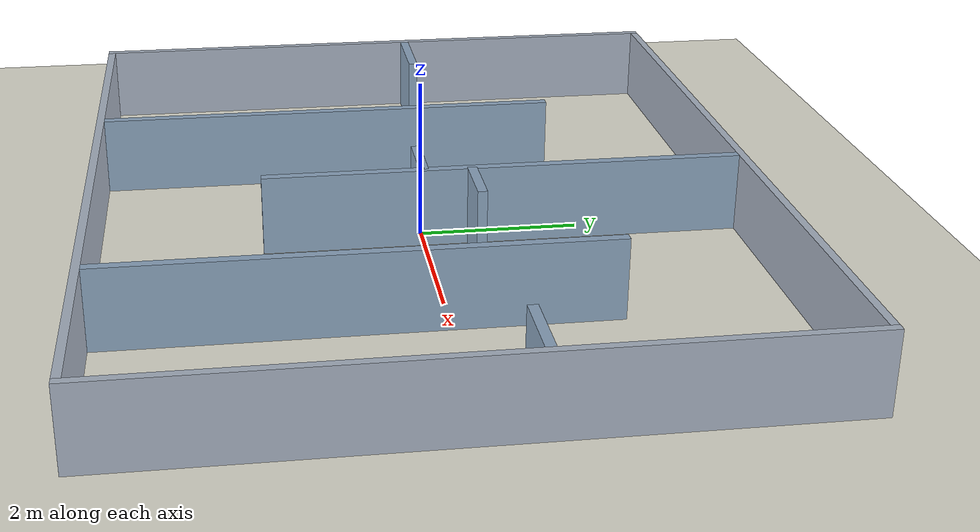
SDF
<sdf version="1.6">
 <world name="simulation_maze_aruco">
  <gravity>0 0 -9.81</gravity>
  <physics name="default_physics" default="true" type="ode">
   <max_step_size>0.001</max_step_size>
   <real_time_factor>1</real_time_factor>
   <real_time_update_rate>1000</real_time_update_rate>
  </physics>
  <scene>
   <ambient>0.55 0.55 0.55 1</ambient>
   <background>0.80 0.85 0.90 1</background>
   <shadows>true</shadows>
  </scene>
  <light name="sun" type="directional">
   <pose>0 0 10 0 0 0</pose>
   <diffuse>0.80 0.80 0.80 1</diffuse>
   <specular>0.20 0.20 0.20 1</specular>
   <attenuation>
    <range>1000</range>
    <constant>0.9</constant>
    <linear>0.01</linear>
    <quadratic>0.001</quadratic>
   </attenuation>
   <direction>-0.3 0.1 -0.9</direction>
  </light>
  <model name="ground_plane">
   <static>true</static>
   <link name="ground">
    <collision name="collision">
     <geometry><plane><normal>0 0 1</normal><size>100 100</size></plane></geometry>
     <surface><friction><ode><mu>1</mu><mu2>1</mu2></ode></friction></surface>
    </collision>
    <visual name="visual">
     <geometry><plane><normal>0 0 1</normal><size>100 100</size></plane></geometry>
     <material><ambient>0.88 0.87 0.82 1</ambient><diffuse>0.88 0.87 0.82 1</diffuse></material>
    </visual>
   </link>
  </model>
  <model name="west_wall">
   <static>true</static>
   <pose>-5.050 0.000 0.500 0 0 0</pose>
   <link name="body">
    <collision name="collision"><geometry><box><size>0.100 8.200 1.000</size></box></geometry></collision>
    <visual name="visual">
     <geometry><box><size>0.100 8.200 1.000</size></box></geometry>
     <material><ambient>0.66 0.70 0.76 1</ambient><diffuse>0.66 0.70 0.76 1</diffuse></material>
    </visual>
   </link>
  </model>
  <model name="east_wall">
   <static>true</static>
   <pose>5.050 0.000 0.500 0 0 0</pose>
   <link name="body">
    <collision name="collision"><geometry><box><size>0.100 8.200 1.000</size></box></geometry></collision>
    <visual name="visual">
     <geometry><box><size>0.100 8.200 1.000</size></box></geometry>
     <material><ambient>0.66 0.70 0.76 1</ambient><diffuse>0.66 0.70 0.76 1</diffuse></material>
    </visual>
   </link>
  </model>
  <model name="south_wall">
   <static>true</static>
   <pose>0.000 -4.050 0.500 0 0 0</pose>
   <link name="body">
    <collision name="collision"><geometry><box><size>10.000 0.100 1.000</size></box></geometry></collision>
    <visual name="visual">
     <geometry><box><size>10.000 0.100 1.000</size></box></geometry>
     <material><ambient>0.66 0.70 0.76 1</ambient><diffuse>0.66 0.70 0.76 1</diffuse></material>
    </visual>
   </link>
  </model>
  <model name="north_wall">
   <static>true</static>
   <pose>0.000 4.050 0.500 0 0 0</pose>
   <link name="body">
    <collision name="collision"><geometry><box><size>10.000 0.100 1.000</size></box></geometry></collision>
    <visual name="visual">
     <geometry><box><size>10.000 0.100 1.000</size></box></geometry>
     <material><ambient>0.66 0.70 0.76 1</ambient><diffuse>0.66 0.70 0.76 1</diffuse></material>
    </visual>
   </link>
  </model>
  <model name="maze_partition_west">
   <static>true</static>
   <pose>-2.0 -1.0 0.5 0 0 0</pose>
   <link name="wall">
    <collision name="collision">
     <geometry><box><size>0.1200000000000001 6.0 1.0</size></box></geometry>
    </collision>
    <visual name="visual">
     <geometry><box><size>0.1200000000000001 6.0 1.0</size></box></geometry>
     <material><ambient>.55 .65 .75 1</ambient><diffuse>.55 .65 .75 1</diffuse></material>
    </visual>
   </link>
  </model>
  <model name="maze_partition_middle">
   <static>true</static>
   <pose>0.3 1.0 0.5 0 0 0</pose>
   <link name="wall">
    <collision name="collision"><geometry><box><size>0.12 6.0 1.0</size></box></geometry></collision>
    <visual name="visual">
     <geometry><box><size>0.12 6.0 1.0</size></box></geometry>
     <material><ambient>.55 .65 .75 1</ambient><diffuse>.55 .65 .75 1</diffuse></material>
    </visual>
   </link>
  </model>
  <model name="maze_partition_east">
   <static>true</static>
   <pose>2.6 -1.0 0.5 0 0 0</pose>
   <link name="wall">
    <collision name="collision">
     <geometry><box><size>0.1200000000000001 6.0 1.0</size></box></geometry>
    </collision>
    <visual name="visual">
     <geometry><box><size>0.1200000000000001 6.0 1.0</size></box></geometry>
     <material><ambient>.55 .65 .75 1</ambient><diffuse>.55 .65 .75 1</diffuse></material>
    </visual>
   </link>
  </model>
  <model name="maze_west_side_branch">
   <static>true</static>
   <pose>-4.45 0.4 0.5 0 0 0</pose>
   <link name="wall">
    <collision name="collision"><geometry><box><size>1.1 0.12 1.0</size></box></geometry></collision>
    <visual name="visual">
     <geometry><box><size>1.1 0.12 1.0</size></box></geometry>
     <material><ambient>.55 .65 .75 1</ambient><diffuse>.55 .65 .75 1</diffuse></material>
    </visual>
   </link>
  </model>
  <model name="maze_middle_side_branch">
   <static>true</static>
   <pose>-0.1 0.0 0.5 0 0 0</pose>
   <link name="wall">
    <collision name="collision"><geometry><box><size>0.8 0.12 1.0</size></box></geometry></collision>
    <visual name="visual">
     <geometry><box><size>0.8 0.12 1.0</size></box></geometry>
     <material><ambient>.55 .65 .75 1</ambient><diffuse>.55 .65 .75 1</diffuse></material>
    </visual>
   </link>
  </model>
  <model name="maze_east_side_branch">
   <static>true</static>
   <pose>0.7000000000000001 0.6000000000000001 0.5 0 0 0</pose>
   <link name="wall">
    <collision name="collision"><geometry><box><size>0.8 0.12 1.0</size></box></geometry></collision>
    <visual name="visual">
     <geometry><box><size>0.8 0.12 1.0</size></box></geometry>
     <material><ambient>.55 .65 .75 1</ambient><diffuse>.55 .65 .75 1</diffuse></material>
    </visual>
   </link>
  </model>
  <model name="maze_final_side_branch">
   <static>true</static>
   <pose>4.55 0.6000000000000001 0.5 0 0 0</pose>
   <link name="wall">
    <collision name="collision">
     <geometry><box><size>0.9000000000000004 0.12 1.0</size></box></geometry>
    </collision>
    <visual name="visual">
     <geometry><box><size>0.9000000000000004 0.12 1.0</size></box></geometry>
     <material><ambient>.55 .65 .75 1</ambient><diffuse>.55 .65 .75 1</diffuse></material>
    </visual>
   </link>
  </model>
 </world>
</sdf>
